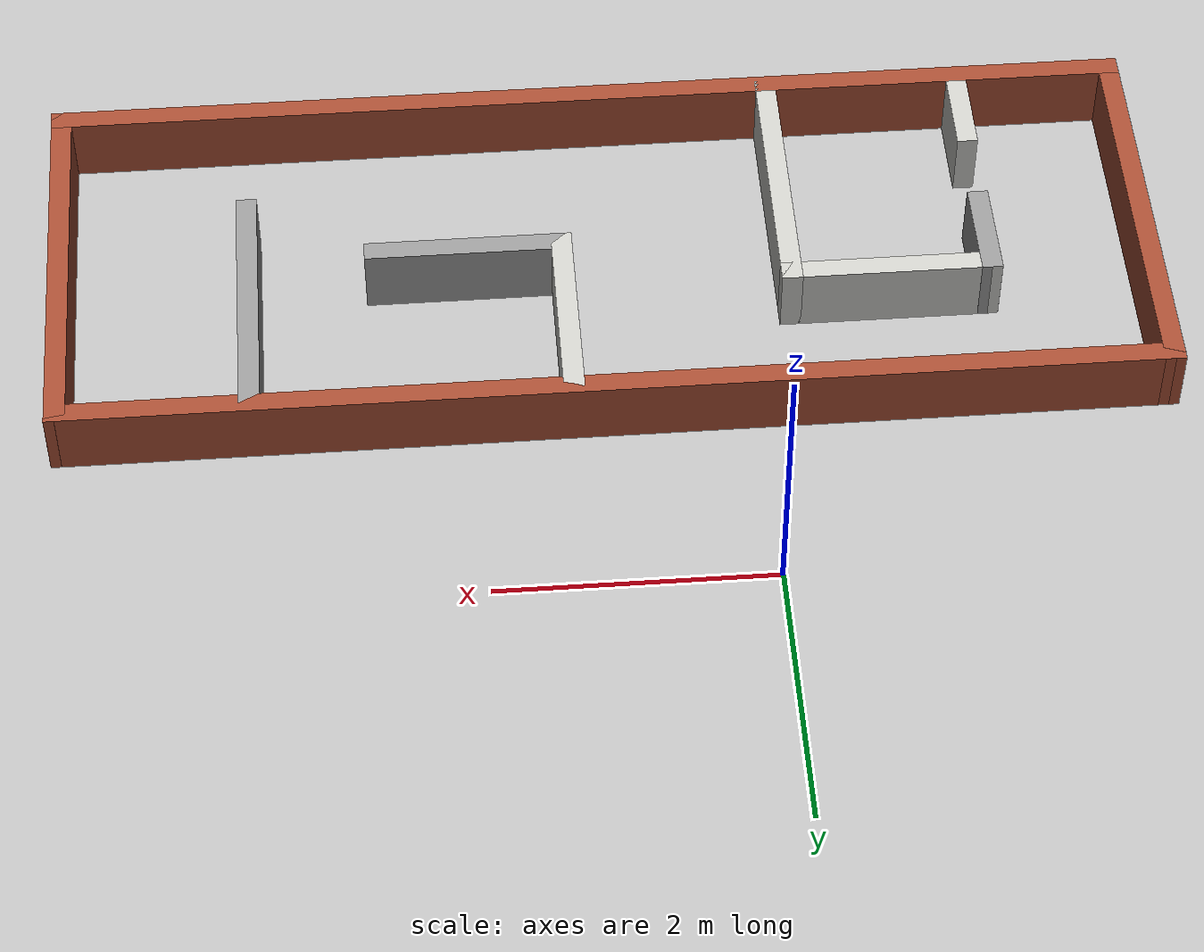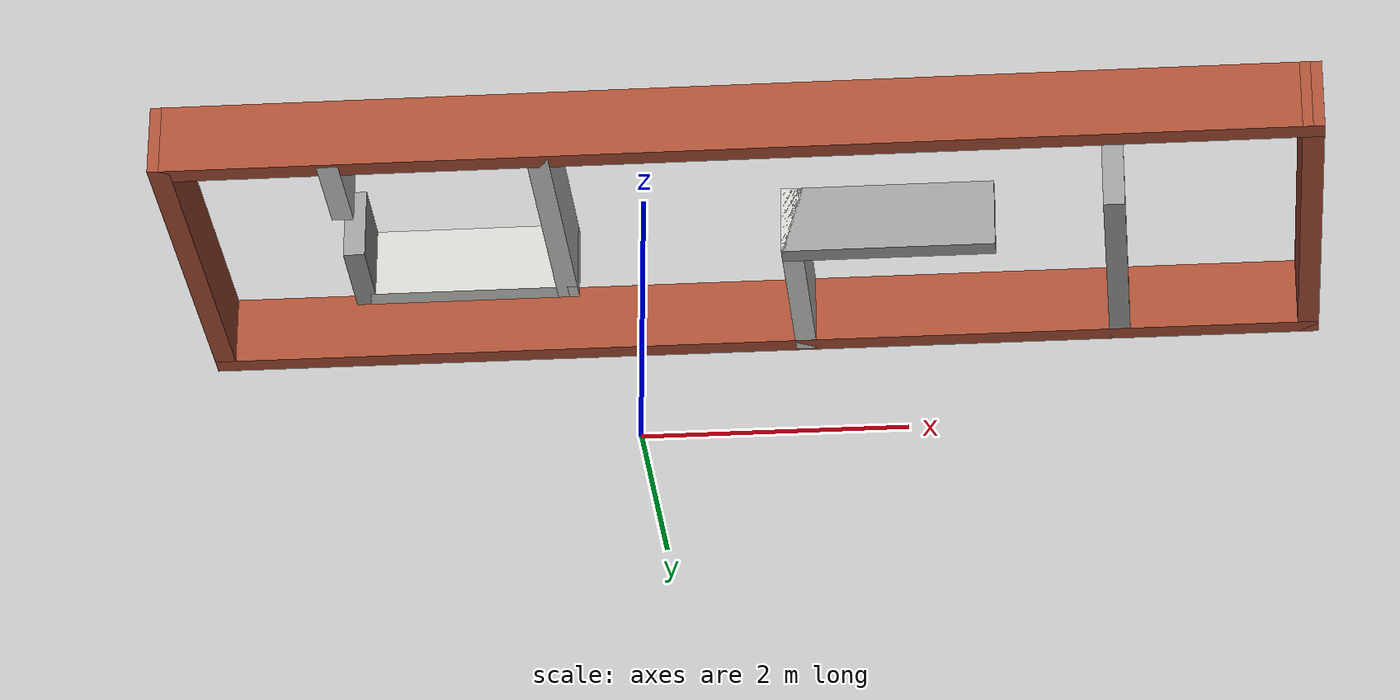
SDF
<?xml version='1.0'?>
<sdf version='1.6'>
  <model name='room'>
    <pose frame=''>1.03 -2.83 0 0 -0 0</pose>
    <link name='Wall_0'>
      <collision name='Wall_0_Collision'>
        <geometry>
          <box>
            <size>8 0.15 0.5</size>
          </box>
        </geometry>
        <pose frame=''>0 0 0.25 0 -0 0</pose>
      </collision>
      <visual name='Wall_0_Visual'>
        <pose frame=''>0 0 0.25 0 -0 0</pose>
        <geometry>
          <box>
            <size>8 0.15 0.5</size>
          </box>
        </geometry>
        <material>
          <script>
            <uri>file://media/materials/scripts/gazebo.material</uri>
            <name>Gazebo/Bricks</name>
          </script>
          <ambient>1 1 1 1</ambient>
        </material>
        <meta>
          <layer>0</layer>
        </meta>
      </visual>
      <pose frame=''>-0.005 1.43 0 0 -0 0</pose>
    </link>
    <link name='Wall_1'>
      <collision name='Wall_1_Collision'>
        <geometry>
          <box>
            <size>3.01002 0.15 0.5</size>
          </box>
        </geometry>
        <pose frame=''>0 0 0.25 0 -0 0</pose>
      </collision>
      <visual name='Wall_1_Visual'>
        <pose frame=''>0 0 0.25 0 -0 0</pose>
        <geometry>
          <box>
            <size>3.01002 0.15 0.5</size>
          </box>
        </geometry>
        <material>
          <script>
            <uri>file://media/materials/scripts/gazebo.material</uri>
            <name>Gazebo/Bricks</name>
          </script>
          <ambient>1 1 1 1</ambient>
        </material>
        <meta>
          <layer>0</layer>
        </meta>
      </visual>
      <pose frame=''>3.925 -0 0 0 -0 -1.5673</pose>
    </link>
    <link name='Wall_10'>
      <collision name='Wall_10_Collision'>
        <geometry>
          <box>
            <size>2 0.15 0.5</size>
          </box>
        </geometry>
        <pose frame=''>0 0 0.25 0 -0 0</pose>
      </collision>
      <visual name='Wall_10_Visual'>
        <pose frame=''>0 0 0.25 0 -0 0</pose>
        <geometry>
          <box>
            <size>2 0.15 0.5</size>
          </box>
        </geometry>
        <material>
          <script>
            <uri>file://media/materials/scripts/gazebo.material</uri>
            <name>Gazebo/CeilingTiled</name>
          </script>
          <ambient>1 1 1 1</ambient>
        </material>
        <meta>
          <layer>0</layer>
        </meta>
      </visual>
      <pose frame=''>-1.325 -0.455 0 0 -0 1.5708</pose>
    </link>
    <link name='Wall_11'>
      <collision name='Wall_11_Collision'>
        <geometry>
          <box>
            <size>1.59225 0.15 0.5</size>
          </box>
        </geometry>
        <pose frame=''>0 0 0.25 0 -0 0</pose>
      </collision>
      <visual name='Wall_11_Visual'>
        <pose frame=''>0 0 0.25 0 -0 0</pose>
        <geometry>
          <box>
            <size>1.59225 0.15 0.5</size>
          </box>
        </geometry>
        <material>
          <script>
            <uri>file://media/materials/scripts/gazebo.material</uri>
            <name>Gazebo/CeilingTiled</name>
          </script>
          <ambient>1 1 1 1</ambient>
        </material>
        <meta>
          <layer>0</layer>
        </meta>
      </visual>
      <pose frame=''>-2.046 0.47 0 0 -0 3.14159</pose>
    </link>
    <link name='Wall_12'>
      <collision name='Wall_12_Collision'>
        <geometry>
          <box>
            <size>0.75 0.15 0.5</size>
          </box>
        </geometry>
        <pose frame=''>0 0 0.25 0 -0 0</pose>
      </collision>
      <visual name='Wall_12_Visual'>
        <pose frame=''>0 0 0.25 0 -0 0</pose>
        <geometry>
          <box>
            <size>0.75 0.15 0.5</size>
          </box>
        </geometry>
        <material>
          <script>
            <uri>file://media/materials/scripts/gazebo.material</uri>
            <name>Gazebo/Grey</name>
          </script>
          <ambient>1 1 1 1</ambient>
        </material>
        <meta>
          <layer>0</layer>
        </meta>
      </visual>
      <pose frame=''>-2.764 0.17 0 0 -0 -1.5608</pose>
    </link>
    <link name='Wall_14'>
      <collision name='Wall_14_Collision'>
        <geometry>
          <box>
            <size>0.75 0.15 0.5</size>
          </box>
        </geometry>
        <pose frame=''>0 0 0.25 0 -0 0</pose>
      </collision>
      <visual name='Wall_14_Visual'>
        <pose frame=''>0 0 0.25 0 -0 0</pose>
        <geometry>
          <box>
            <size>0.75 0.15 0.5</size>
          </box>
        </geometry>
        <material>
          <script>
            <uri>file://media/materials/scripts/gazebo.material</uri>
            <name>Gazebo/CeilingTiled</name>
          </script>
          <ambient>1 1 1 1</ambient>
        </material>
        <meta>
          <layer>0</layer>
        </meta>
      </visual>
      <pose frame=''>-2.761 -1.097 0 0 -0 1.5708</pose>
    </link>
    <link name='Wall_16'>
      <collision name='Wall_16_Collision'>
        <geometry>
          <box>
            <size>1.5 0.15 0.5</size>
          </box>
        </geometry>
        <pose frame=''>0 0 0.25 0 -0 0</pose>
      </collision>
      <visual name='Wall_16_Visual'>
        <pose frame=''>0 0 0.25 0 -0 0</pose>
        <geometry>
          <box>
            <size>1.5 0.15 0.5</size>
          </box>
        </geometry>
        <material>
          <script>
            <uri>file://media/materials/scripts/gazebo.material</uri>
            <name>Gazebo/CeilingTiled</name>
          </script>
          <ambient>1 1 1 1</ambient>
        </material>
        <meta>
          <layer>0</layer>
        </meta>
      </visual>
      <pose frame=''>0.304 0.737 0 0 -0 -1.5708</pose>
    </link>
    <link name='Wall_17'>
      <collision name='Wall_17_Collision'>
        <geometry>
          <box>
            <size>1.5 0.15 0.5</size>
          </box>
        </geometry>
        <pose frame=''>0 0 0.25 0 -0 0</pose>
      </collision>
      <visual name='Wall_17_Visual'>
        <pose frame=''>0 0 0.25 0 -0 0</pose>
        <geometry>
          <box>
            <size>1.5 0.15 0.5</size>
          </box>
        </geometry>
        <material>
          <script>
            <uri>file://media/materials/scripts/gazebo.material</uri>
            <name>Gazebo/Grey</name>
          </script>
          <ambient>1 1 1 1</ambient>
        </material>
        <meta>
          <layer>0</layer>
        </meta>
      </visual>
      <pose frame=''>0.979 0.062 0 0 -0 0</pose>
    </link>
    <link name='Wall_2'>
      <collision name='Wall_2_Collision'>
        <geometry>
          <box>
            <size>8 0.15 0.5</size>
          </box>
        </geometry>
        <pose frame=''>0 0 0.25 0 -0 0</pose>
      </collision>
      <visual name='Wall_2_Visual'>
        <pose frame=''>0 0 0.25 0 -0 0</pose>
        <geometry>
          <box>
            <size>8 0.15 0.5</size>
          </box>
        </geometry>
        <material>
          <script>
            <uri>file://media/materials/scripts/gazebo.material</uri>
            <name>Gazebo/Bricks</name>
          </script>
          <ambient>1 1 1 1</ambient>
        </material>
        <meta>
          <layer>0</layer>
        </meta>
      </visual>
      <pose frame=''>0.005 -1.43 0 0 -0 3.14159</pose>
    </link>
    <link name='Wall_3'>
      <collision name='Wall_3_Collision'>
        <geometry>
          <box>
            <size>3.01002 0.15 0.5</size>
          </box>
        </geometry>
        <pose frame=''>0 0 0.25 0 -0 0</pose>
      </collision>
      <visual name='Wall_3_Visual'>
        <pose frame=''>0 0 0.25 0 -0 0</pose>
        <geometry>
          <box>
            <size>3.01002 0.15 0.5</size>
          </box>
        </geometry>
        <material>
          <script>
            <uri>file://media/materials/scripts/gazebo.material</uri>
            <name>Gazebo/Bricks</name>
          </script>
          <ambient>1 1 1 1</ambient>
        </material>
        <meta>
          <layer>0</layer>
        </meta>
      </visual>
      <pose frame=''>-3.925 -0 0 0 -0 1.57429</pose>
    </link>
    <link name='Wall_5'>
      <collision name='Wall_5_Collision'>
        <geometry>
          <box>
            <size>2 0.15 0.5</size>
          </box>
        </geometry>
        <pose frame=''>0 0 0.25 0 -0 0</pose>
      </collision>
      <visual name='Wall_5_Visual'>
        <pose frame=''>0 0 0.25 0 -0 0</pose>
        <geometry>
          <box>
            <size>2 0.15 0.5</size>
          </box>
        </geometry>
        <material>
          <script>
            <uri>file://media/materials/scripts/gazebo.material</uri>
            <name>Gazebo/Grey</name>
          </script>
          <ambient>1 1 1 1</ambient>
        </material>
        <meta>
          <layer>0</layer>
        </meta>
      </visual>
      <pose frame=''>2.57 0.485 0 0 -0 -1.5708</pose>
    </link>
    <static>1</static>
  </model>
</sdf>
